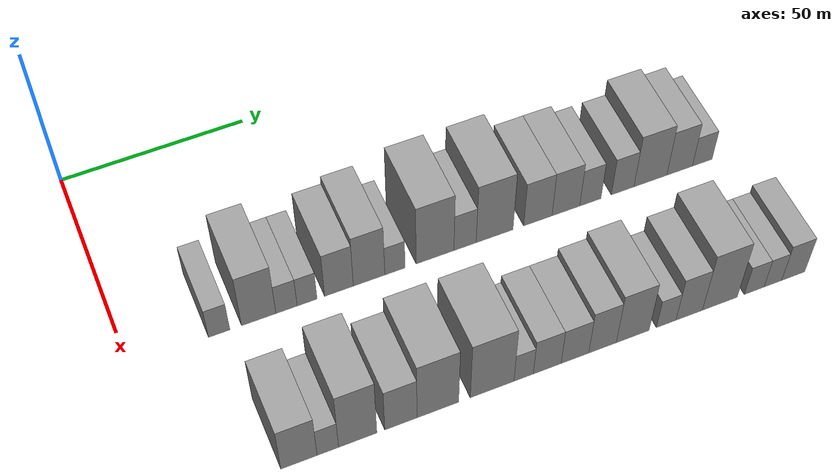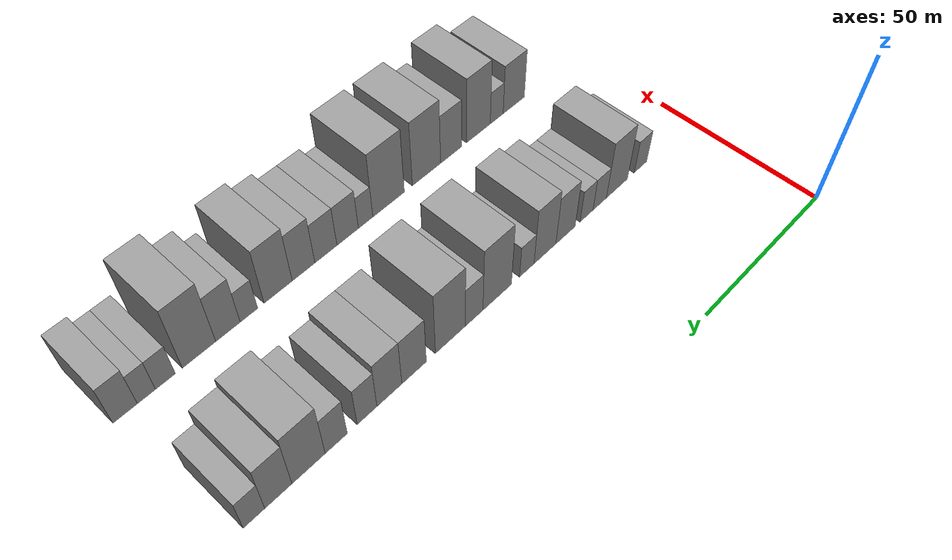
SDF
<sdf version="1.6">
 <world name="default">
  <model name="building_39">
   <static>1</static>
   <pose>50.0000 23.1446 0 0.000000 0.000000 0.000000</pose>
   <link name="link">
    <pose>0 0 6.00 0 0 0</pose>
    <collision name="collision"><geometry><box><size>20.0000 5.5098 12.0000</size></box></geometry></collision>
    <visual name="visual">
     <cast_shadows>0</cast_shadows>
     <geometry><box><size>20.0000 5.5098 12.0000</size></box></geometry>
     <material>
      <script>
       <uri>model://grey_wall/materials/scripts</uri>
       <uri>model://grey_wall/materials/textures</uri>
       <name>vrc/grey_wall</name>
      </script>
     </material>
    </visual>
   </link>
  </model>
  <model name="building_40">
   <static>1</static>
   <pose>50.0000 33.3814 0 0.000000 0.000000 0.000000</pose>
   <link name="link">
    <pose>0 0 10.50 0 0 0</pose>
    <collision name="collision"><geometry><box><size>20.0000 8.9638 21.0000</size></box></geometry></collision>
    <visual name="visual">
     <cast_shadows>0</cast_shadows>
     <geometry><box><size>20.0000 8.9638 21.0000</size></box></geometry>
     <material>
      <script>
       <uri>model://grey_wall/materials/scripts</uri>
       <uri>model://grey_wall/materials/textures</uri>
       <name>vrc/grey_wall</name>
      </script>
     </material>
    </visual>
   </link>
  </model>
  <model name="building_41">
   <static>1</static>
   <pose>50.0000 40.6483 0 0.000000 0.000000 0.000000</pose>
   <link name="link">
    <pose>0 0 6.00 0 0 0</pose>
    <collision name="collision"><geometry><box><size>20.0000 5.5700 12.0000</size></box></geometry></collision>
    <visual name="visual">
     <cast_shadows>0</cast_shadows>
     <geometry><box><size>20.0000 5.5700 12.0000</size></box></geometry>
     <material>
      <script>
       <uri>model://grey_wall/materials/scripts</uri>
       <uri>model://grey_wall/materials/textures</uri>
       <name>vrc/grey_wall</name>
      </script>
     </material>
    </visual>
   </link>
  </model>
  <model name="building_42">
   <static>1</static>
   <pose>50.0000 46.0547 0 0.000000 0.000000 0.000000</pose>
   <link name="link">
    <pose>0 0 6.00 0 0 0</pose>
    <collision name="collision"><geometry><box><size>20.0000 5.2428 12.0000</size></box></geometry></collision>
    <visual name="visual">
     <cast_shadows>0</cast_shadows>
     <geometry><box><size>20.0000 5.2428 12.0000</size></box></geometry>
     <material>
      <script>
       <uri>model://grey_wall/materials/scripts</uri>
       <uri>model://grey_wall/materials/textures</uri>
       <name>vrc/grey_wall</name>
      </script>
     </material>
    </visual>
   </link>
  </model>
  <model name="building_43">
   <static>1</static>
   <pose>50.0000 54.5110 0 0.000000 0.000000 0.000000</pose>
   <link name="link">
    <pose>0 0 9.00 0 0 0</pose>
    <collision name="collision"><geometry><box><size>20.0000 7.6698 18.0000</size></box></geometry></collision>
    <visual name="visual">
     <cast_shadows>0</cast_shadows>
     <geometry><box><size>20.0000 7.6698 18.0000</size></box></geometry>
     <material>
      <script>
       <uri>model://grey_wall/materials/scripts</uri>
       <uri>model://grey_wall/materials/textures</uri>
       <name>vrc/grey_wall</name>
      </script>
     </material>
    </visual>
   </link>
  </model>
  <model name="building_44">
   <static>1</static>
   <pose>50.0000 62.5770 0 0.000000 0.000000 0.000000</pose>
   <link name="link">
    <pose>0 0 10.50 0 0 0</pose>
    <collision name="collision"><geometry><box><size>20.0000 8.4621 21.0000</size></box></geometry></collision>
    <visual name="visual">
     <cast_shadows>0</cast_shadows>
     <geometry><box><size>20.0000 8.4621 21.0000</size></box></geometry>
     <material>
      <script>
       <uri>model://grey_wall/materials/scripts</uri>
       <uri>model://grey_wall/materials/textures</uri>
       <name>vrc/grey_wall</name>
      </script>
     </material>
    </visual>
   </link>
  </model>
  <model name="building_45">
   <static>1</static>
   <pose>50.0000 69.5375 0 0.000000 0.000000 0.000000</pose>
   <link name="link">
    <pose>0 0 6.00 0 0 0</pose>
    <collision name="collision"><geometry><box><size>20.0000 5.4590 12.0000</size></box></geometry></collision>
    <visual name="visual">
     <cast_shadows>0</cast_shadows>
     <geometry><box><size>20.0000 5.4590 12.0000</size></box></geometry>
     <material>
      <script>
       <uri>model://grey_wall/materials/scripts</uri>
       <uri>model://grey_wall/materials/textures</uri>
       <name>vrc/grey_wall</name>
      </script>
     </material>
    </visual>
   </link>
  </model>
  <model name="building_46">
   <static>1</static>
   <pose>50.0000 80.4547 0 0.000000 0.000000 0.000000</pose>
   <link name="link">
    <pose>0 0 12.00 0 0 0</pose>
    <collision name="collision"><geometry><box><size>20.0000 10.3753 24.0000</size></box></geometry></collision>
    <visual name="visual">
     <cast_shadows>0</cast_shadows>
     <geometry><box><size>20.0000 10.3753 24.0000</size></box></geometry>
     <material>
      <script>
       <uri>model://grey_wall/materials/scripts</uri>
       <uri>model://grey_wall/materials/textures</uri>
       <name>vrc/grey_wall</name>
      </script>
     </material>
    </visual>
   </link>
  </model>
  <model name="building_47">
   <static>1</static>
   <pose>50.0000 88.7172 0 0.000000 0.000000 0.000000</pose>
   <link name="link">
    <pose>0 0 7.50 0 0 0</pose>
    <collision name="collision"><geometry><box><size>20.0000 6.1498 15.0000</size></box></geometry></collision>
    <visual name="visual">
     <cast_shadows>0</cast_shadows>
     <geometry><box><size>20.0000 6.1498 15.0000</size></box></geometry>
     <material>
      <script>
       <uri>model://grey_wall/materials/scripts</uri>
       <uri>model://grey_wall/materials/textures</uri>
       <name>vrc/grey_wall</name>
      </script>
     </material>
    </visual>
   </link>
  </model>
  <model name="building_48">
   <static>1</static>
   <pose>50.0000 96.9360 0 0.000000 0.000000 0.000000</pose>
   <link name="link">
    <pose>0 0 12.00 0 0 0</pose>
    <collision name="collision"><geometry><box><size>20.0000 10.2880 24.0000</size></box></geometry></collision>
    <visual name="visual">
     <cast_shadows>0</cast_shadows>
     <geometry><box><size>20.0000 10.2880 24.0000</size></box></geometry>
     <material>
      <script>
       <uri>model://grey_wall/materials/scripts</uri>
       <uri>model://grey_wall/materials/textures</uri>
       <name>vrc/grey_wall</name>
      </script>
     </material>
    </visual>
   </link>
  </model>
  <model name="building_49">
   <static>1</static>
   <pose>50.0000 109.0891 0 0.000000 0.000000 0.000000</pose>
   <link name="link">
    <pose>0 0 9.00 0 0 0</pose>
    <collision name="collision"><geometry><box><size>20.0000 8.0180 18.0000</size></box></geometry></collision>
    <visual name="visual">
     <cast_shadows>0</cast_shadows>
     <geometry><box><size>20.0000 8.0180 18.0000</size></box></geometry>
     <material>
      <script>
       <uri>model://grey_wall/materials/scripts</uri>
       <uri>model://grey_wall/materials/textures</uri>
       <name>vrc/grey_wall</name>
      </script>
     </material>
    </visual>
   </link>
  </model>
  <model name="building_50">
   <static>1</static>
   <pose>50.0000 117.0477 0 0.000000 0.000000 0.000000</pose>
   <link name="link">
    <pose>0 0 9.00 0 0 0</pose>
    <collision name="collision"><geometry><box><size>20.0000 7.8993 18.0000</size></box></geometry></collision>
    <visual name="visual">
     <cast_shadows>0</cast_shadows>
     <geometry><box><size>20.0000 7.8993 18.0000</size></box></geometry>
     <material>
      <script>
       <uri>model://grey_wall/materials/scripts</uri>
       <uri>model://grey_wall/materials/textures</uri>
       <name>vrc/grey_wall</name>
      </script>
     </material>
    </visual>
   </link>
  </model>
  <model name="building_51">
   <static>1</static>
   <pose>50.0000 124.0484 0 0.000000 0.000000 0.000000</pose>
   <link name="link">
    <pose>0 0 7.50 0 0 0</pose>
    <collision name="collision"><geometry><box><size>20.0000 6.1020 15.0000</size></box></geometry></collision>
    <visual name="visual">
     <cast_shadows>0</cast_shadows>
     <geometry><box><size>20.0000 6.1020 15.0000</size></box></geometry>
     <material>
      <script>
       <uri>model://grey_wall/materials/scripts</uri>
       <uri>model://grey_wall/materials/textures</uri>
       <name>vrc/grey_wall</name>
      </script>
     </material>
    </visual>
   </link>
  </model>
  <model name="building_52">
   <static>1</static>
   <pose>50.0000 133.3805 0 0.000000 0.000000 0.000000</pose>
   <link name="link">
    <pose>0 0 7.50 0 0 0</pose>
    <collision name="collision"><geometry><box><size>20.0000 6.5623 15.0000</size></box></geometry></collision>
    <visual name="visual">
     <cast_shadows>0</cast_shadows>
     <geometry><box><size>20.0000 6.5623 15.0000</size></box></geometry>
     <material>
      <script>
       <uri>model://grey_wall/materials/scripts</uri>
       <uri>model://grey_wall/materials/textures</uri>
       <name>vrc/grey_wall</name>
      </script>
     </material>
    </visual>
   </link>
  </model>
  <model name="building_53">
   <static>1</static>
   <pose>50.0000 141.4702 0 0.000000 0.000000 0.000000</pose>
   <link name="link">
    <pose>0 0 10.50 0 0 0</pose>
    <collision name="collision"><geometry><box><size>20.0000 9.6170 21.0000</size></box></geometry></collision>
    <visual name="visual">
     <cast_shadows>0</cast_shadows>
     <geometry><box><size>20.0000 9.6170 21.0000</size></box></geometry>
     <material>
      <script>
       <uri>model://grey_wall/materials/scripts</uri>
       <uri>model://grey_wall/materials/textures</uri>
       <name>vrc/grey_wall</name>
      </script>
     </material>
    </visual>
   </link>
  </model>
  <model name="building_54">
   <static>1</static>
   <pose>50.0000 150.0559 0 0.000000 0.000000 0.000000</pose>
   <link name="link">
    <pose>0 0 9.00 0 0 0</pose>
    <collision name="collision"><geometry><box><size>20.0000 7.5544 18.0000</size></box></geometry></collision>
    <visual name="visual">
     <cast_shadows>0</cast_shadows>
     <geometry><box><size>20.0000 7.5544 18.0000</size></box></geometry>
     <material>
      <script>
       <uri>model://grey_wall/materials/scripts</uri>
       <uri>model://grey_wall/materials/textures</uri>
       <name>vrc/grey_wall</name>
      </script>
     </material>
    </visual>
   </link>
  </model>
  <model name="building_55">
   <static>1</static>
   <pose>50.0000 156.7606 0 0.000000 0.000000 0.000000</pose>
   <link name="link">
    <pose>0 0 6.00 0 0 0</pose>
    <collision name="collision"><geometry><box><size>20.0000 5.8550 12.0000</size></box></geometry></collision>
    <visual name="visual">
     <cast_shadows>0</cast_shadows>
     <geometry><box><size>20.0000 5.8550 12.0000</size></box></geometry>
     <material>
      <script>
       <uri>model://grey_wall/materials/scripts</uri>
       <uri>model://grey_wall/materials/textures</uri>
       <name>vrc/grey_wall</name>
      </script>
     </material>
    </visual>
   </link>
  </model>
  <model name="building_102">
   <static>1</static>
   <pose>90.0000 29.1217 0 0.000000 0.000000 0.000000</pose>
   <link name="link">
    <pose>0 0 9.00 0 0 0</pose>
    <collision name="collision"><geometry><box><size>20.0000 8.9713 18.0000</size></box></geometry></collision>
    <visual name="visual">
     <cast_shadows>0</cast_shadows>
     <geometry><box><size>20.0000 8.9713 18.0000</size></box></geometry>
     <material>
      <script>
       <uri>model://grey_wall/materials/scripts</uri>
       <uri>model://grey_wall/materials/textures</uri>
       <name>vrc/grey_wall</name>
      </script>
     </material>
    </visual>
   </link>
  </model>
  <model name="building_103">
   <static>1</static>
   <pose>90.0000 36.2832 0 0.000000 0.000000 0.000000</pose>
   <link name="link">
    <pose>0 0 6.00 0 0 0</pose>
    <collision name="collision"><geometry><box><size>20.0000 5.3517 12.0000</size></box></geometry></collision>
    <visual name="visual">
     <cast_shadows>0</cast_shadows>
     <geometry><box><size>20.0000 5.3517 12.0000</size></box></geometry>
     <material>
      <script>
       <uri>model://grey_wall/materials/scripts</uri>
       <uri>model://grey_wall/materials/textures</uri>
       <name>vrc/grey_wall</name>
      </script>
     </material>
    </visual>
   </link>
  </model>
  <model name="building_104">
   <static>1</static>
   <pose>90.0000 43.7792 0 0.000000 0.000000 0.000000</pose>
   <link name="link">
    <pose>0 0 12.00 0 0 0</pose>
    <collision name="collision"><geometry><box><size>20.0000 9.6404 24.0000</size></box></geometry></collision>
    <visual name="visual">
     <cast_shadows>0</cast_shadows>
     <geometry><box><size>20.0000 9.6404 24.0000</size></box></geometry>
     <material>
      <script>
       <uri>model://grey_wall/materials/scripts</uri>
       <uri>model://grey_wall/materials/textures</uri>
       <name>vrc/grey_wall</name>
      </script>
     </material>
    </visual>
   </link>
  </model>
  <model name="building_105">
   <static>1</static>
   <pose>90.0000 54.7107 0 0.000000 0.000000 0.000000</pose>
   <link name="link">
    <pose>0 0 9.00 0 0 0</pose>
    <collision name="collision"><geometry><box><size>20.0000 8.2225 18.0000</size></box></geometry></collision>
    <visual name="visual">
     <cast_shadows>0</cast_shadows>
     <geometry><box><size>20.0000 8.2225 18.0000</size></box></geometry>
     <material>
      <script>
       <uri>model://grey_wall/materials/scripts</uri>
       <uri>model://grey_wall/materials/textures</uri>
       <name>vrc/grey_wall</name>
      </script>
     </material>
    </visual>
   </link>
  </model>
  <model name="building_106">
   <static>1</static>
   <pose>90.0000 64.1872 0 0.000000 0.000000 0.000000</pose>
   <link name="link">
    <pose>0 0 12.00 0 0 0</pose>
    <collision name="collision"><geometry><box><size>20.0000 10.7304 24.0000</size></box></geometry></collision>
    <visual name="visual">
     <cast_shadows>0</cast_shadows>
     <geometry><box><size>20.0000 10.7304 24.0000</size></box></geometry>
     <material>
      <script>
       <uri>model://grey_wall/materials/scripts</uri>
       <uri>model://grey_wall/materials/textures</uri>
       <name>vrc/grey_wall</name>
      </script>
     </material>
    </visual>
   </link>
  </model>
  <model name="building_107">
   <static>1</static>
   <pose>90.0000 78.2740 0 0.000000 0.000000 0.000000</pose>
   <link name="link">
    <pose>0 0 12.00 0 0 0</pose>
    <collision name="collision"><geometry><box><size>20.0000 11.4433 24.0000</size></box></geometry></collision>
    <visual name="visual">
     <cast_shadows>0</cast_shadows>
     <geometry><box><size>20.0000 11.4433 24.0000</size></box></geometry>
     <material>
      <script>
       <uri>model://grey_wall/materials/scripts</uri>
       <uri>model://grey_wall/materials/textures</uri>
       <name>vrc/grey_wall</name>
      </script>
     </material>
    </visual>
   </link>
  </model>
  <model name="building_108">
   <static>1</static>
   <pose>90.0000 86.5516 0 0.000000 0.000000 0.000000</pose>
   <link name="link">
    <pose>0 0 6.00 0 0 0</pose>
    <collision name="collision"><geometry><box><size>20.0000 5.1120 12.0000</size></box></geometry></collision>
    <visual name="visual">
     <cast_shadows>0</cast_shadows>
     <geometry><box><size>20.0000 5.1120 12.0000</size></box></geometry>
     <material>
      <script>
       <uri>model://grey_wall/materials/scripts</uri>
       <uri>model://grey_wall/materials/textures</uri>
       <name>vrc/grey_wall</name>
      </script>
     </material>
    </visual>
   </link>
  </model>
  <model name="building_109">
   <static>1</static>
   <pose>90.0000 92.8105 0 0.000000 0.000000 0.000000</pose>
   <link name="link">
    <pose>0 0 7.50 0 0 0</pose>
    <collision name="collision"><geometry><box><size>20.0000 7.4057 15.0000</size></box></geometry></collision>
    <visual name="visual">
     <cast_shadows>0</cast_shadows>
     <geometry><box><size>20.0000 7.4057 15.0000</size></box></geometry>
     <material>
      <script>
       <uri>model://grey_wall/materials/scripts</uri>
       <uri>model://grey_wall/materials/textures</uri>
       <name>vrc/grey_wall</name>
      </script>
     </material>
    </visual>
   </link>
  </model>
  <model name="building_110">
   <static>1</static>
   <pose>90.0000 100.2233 0 0.000000 0.000000 0.000000</pose>
   <link name="link">
    <pose>0 0 7.50 0 0 0</pose>
    <collision name="collision"><geometry><box><size>20.0000 7.4199 15.0000</size></box></geometry></collision>
    <visual name="visual">
     <cast_shadows>0</cast_shadows>
     <geometry><box><size>20.0000 7.4199 15.0000</size></box></geometry>
     <material>
      <script>
       <uri>model://grey_wall/materials/scripts</uri>
       <uri>model://grey_wall/materials/textures</uri>
       <name>vrc/grey_wall</name>
      </script>
     </material>
    </visual>
   </link>
  </model>
  <model name="building_111">
   <static>1</static>
   <pose>90.0000 107.6613 0 0.000000 0.000000 0.000000</pose>
   <link name="link">
    <pose>0 0 9.00 0 0 0</pose>
    <collision name="collision"><geometry><box><size>20.0000 7.4562 18.0000</size></box></geometry></collision>
    <visual name="visual">
     <cast_shadows>0</cast_shadows>
     <geometry><box><size>20.0000 7.4562 18.0000</size></box></geometry>
     <material>
      <script>
       <uri>model://grey_wall/materials/scripts</uri>
       <uri>model://grey_wall/materials/textures</uri>
       <name>vrc/grey_wall</name>
      </script>
     </material>
    </visual>
   </link>
  </model>
  <model name="building_112">
   <static>1</static>
   <pose>90.0000 115.8866 0 0.000000 0.000000 0.000000</pose>
   <link name="link">
    <pose>0 0 10.50 0 0 0</pose>
    <collision name="collision"><geometry><box><size>20.0000 8.9945 21.0000</size></box></geometry></collision>
    <visual name="visual">
     <cast_shadows>0</cast_shadows>
     <geometry><box><size>20.0000 8.9945 21.0000</size></box></geometry>
     <material>
      <script>
       <uri>model://grey_wall/materials/scripts</uri>
       <uri>model://grey_wall/materials/textures</uri>
       <name>vrc/grey_wall</name>
      </script>
     </material>
    </visual>
   </link>
  </model>
  <model name="building_113">
   <static>1</static>
   <pose>90.0000 125.0747 0 0.000000 0.000000 0.000000</pose>
   <link name="link">
    <pose>0 0 6.00 0 0 0</pose>
    <collision name="collision"><geometry><box><size>20.0000 5.3817 12.0000</size></box></geometry></collision>
    <visual name="visual">
     <cast_shadows>0</cast_shadows>
     <geometry><box><size>20.0000 5.3817 12.0000</size></box></geometry>
     <material>
      <script>
       <uri>model://grey_wall/materials/scripts</uri>
       <uri>model://grey_wall/materials/textures</uri>
       <name>vrc/grey_wall</name>
      </script>
     </material>
    </visual>
   </link>
  </model>
  <model name="building_114">
   <static>1</static>
   <pose>90.0000 131.4530 0 0.000000 0.000000 0.000000</pose>
   <link name="link">
    <pose>0 0 9.00 0 0 0</pose>
    <collision name="collision"><geometry><box><size>20.0000 7.3749 18.0000</size></box></geometry></collision>
    <visual name="visual">
     <cast_shadows>0</cast_shadows>
     <geometry><box><size>20.0000 7.3749 18.0000</size></box></geometry>
     <material>
      <script>
       <uri>model://grey_wall/materials/scripts</uri>
       <uri>model://grey_wall/materials/textures</uri>
       <name>vrc/grey_wall</name>
      </script>
     </material>
    </visual>
   </link>
  </model>
  <model name="building_115">
   <static>1</static>
   <pose>90.0000 140.0361 0 0.000000 0.000000 0.000000</pose>
   <link name="link">
    <pose>0 0 12.00 0 0 0</pose>
    <collision name="collision"><geometry><box><size>20.0000 9.7913 24.0000</size></box></geometry></collision>
    <visual name="visual">
     <cast_shadows>0</cast_shadows>
     <geometry><box><size>20.0000 9.7913 24.0000</size></box></geometry>
     <material>
      <script>
       <uri>model://grey_wall/materials/scripts</uri>
       <uri>model://grey_wall/materials/textures</uri>
       <name>vrc/grey_wall</name>
      </script>
     </material>
    </visual>
   </link>
  </model>
  <model name="building_116">
   <static>1</static>
   <pose>90.0000 149.7193 0 0.000000 0.000000 0.000000</pose>
   <link name="link">
    <pose>0 0 6.00 0 0 0</pose>
    <collision name="collision"><geometry><box><size>20.0000 5.5751 12.0000</size></box></geometry></collision>
    <visual name="visual">
     <cast_shadows>0</cast_shadows>
     <geometry><box><size>20.0000 5.5751 12.0000</size></box></geometry>
     <material>
      <script>
       <uri>model://grey_wall/materials/scripts</uri>
       <uri>model://grey_wall/materials/textures</uri>
       <name>vrc/grey_wall</name>
      </script>
     </material>
    </visual>
   </link>
  </model>
  <model name="building_117">
   <static>1</static>
   <pose>90.0000 155.0196 0 0.000000 0.000000 0.000000</pose>
   <link name="link">
    <pose>0 0 6.00 0 0 0</pose>
    <collision name="collision"><geometry><box><size>20.0000 5.0254 12.0000</size></box></geometry></collision>
    <visual name="visual">
     <cast_shadows>0</cast_shadows>
     <geometry><box><size>20.0000 5.0254 12.0000</size></box></geometry>
     <material>
      <script>
       <uri>model://grey_wall/materials/scripts</uri>
       <uri>model://grey_wall/materials/textures</uri>
       <name>vrc/grey_wall</name>
      </script>
     </material>
    </visual>
   </link>
  </model>
  <model name="building_118">
   <static>1</static>
   <pose>90.0000 160.8534 0 0.000000 0.000000 0.000000</pose>
   <link name="link">
    <pose>0 0 7.50 0 0 0</pose>
    <collision name="collision"><geometry><box><size>20.0000 6.6423 15.0000</size></box></geometry></collision>
    <visual name="visual">
     <cast_shadows>0</cast_shadows>
     <geometry><box><size>20.0000 6.6423 15.0000</size></box></geometry>
     <material>
      <script>
       <uri>model://grey_wall/materials/scripts</uri>
       <uri>model://grey_wall/materials/textures</uri>
       <name>vrc/grey_wall</name>
      </script>
     </material>
    </visual>
   </link>
  </model>
 </world>
</sdf>
